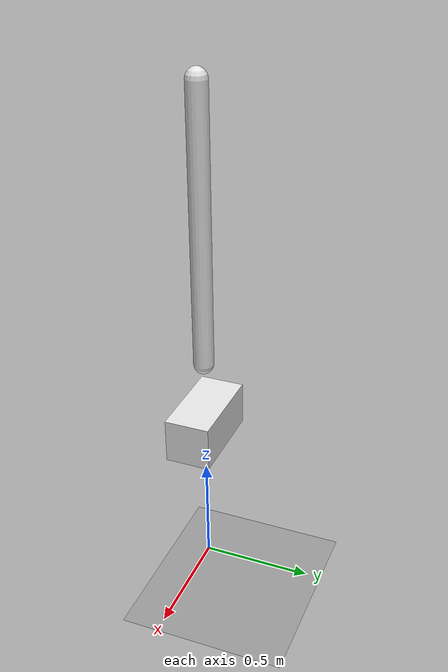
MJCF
<mujoco>
    <option timestep="0.05" gravity="0 0 -9.81" integrator="RK4">
		<flag sensornoise="enable" energy="enable"/>
	</option>
    <default>
        <geom contype='0' friction='1 0.1 0.1'/>
    </default>
    <worldbody>
        <body name="cart" pos="0 0 0.75">
            <geom name="cart" type="box" size="0.2 0.1 0.1" rgba="0.9 0.9 0.9 1"/>
            <joint name="slide" type="slide" axis="1 0 0"/>
            <body name="pole" pos="0 0 0.9">
                <geom name="pole" type="capsule" size="0.045 0.6" rgba="0.9 0.9 0.9 1"/>
                <joint name="hinge" type="hinge" pos="0 0 -0.6" axis="0 1 0"/>
            </body>
        </body>
    </worldbody>
    <actuator>
        <motor name="force" joint="slide" ctrllimited="true" ctrlrange="-50 50"/>
    </actuator>
    <visual>
        <map fogstart="3" fogend="5" znear="0.05"/>
    </visual>
    <asset>
        <texture name="texplane" type="2d" builtin="checker" rgb1="1 1 1" rgb2="0.2 0.2 0.2" width="512" height="512" mark="cross" markrgb="1 0 0" />
        <material name="matplane" reflectance="0.5" texture="texplane" />
    </asset>
    <worldbody>
        <geom name="ground" pos="0 0 0" size="50 50 0.125" type="plane" material="matplane" />
    </worldbody>
</mujoco>
